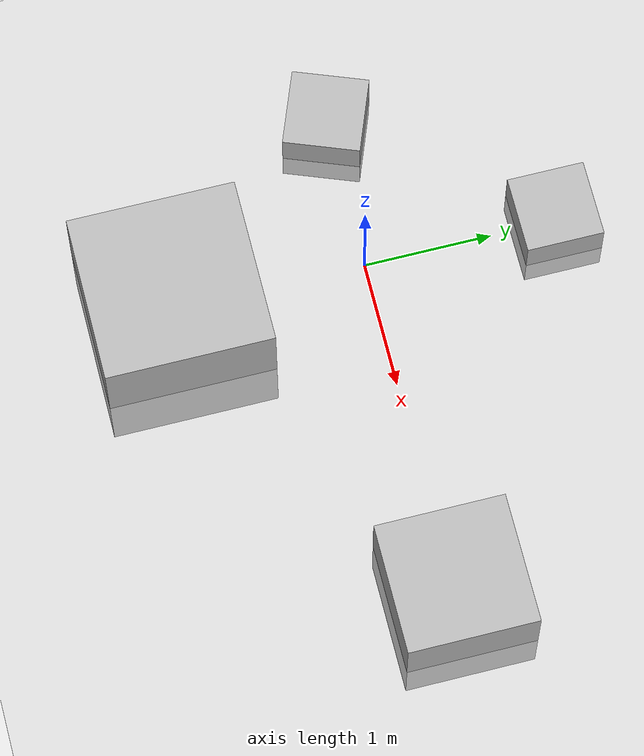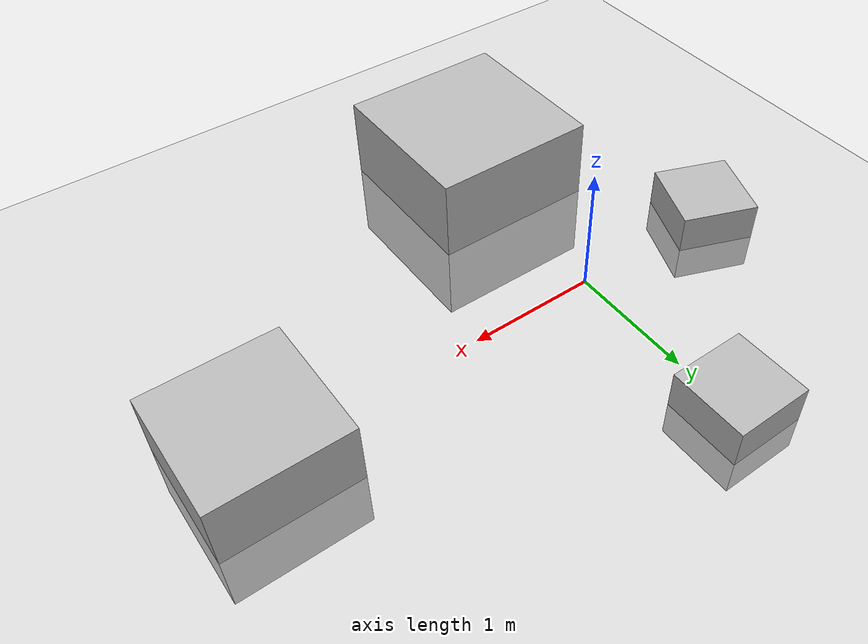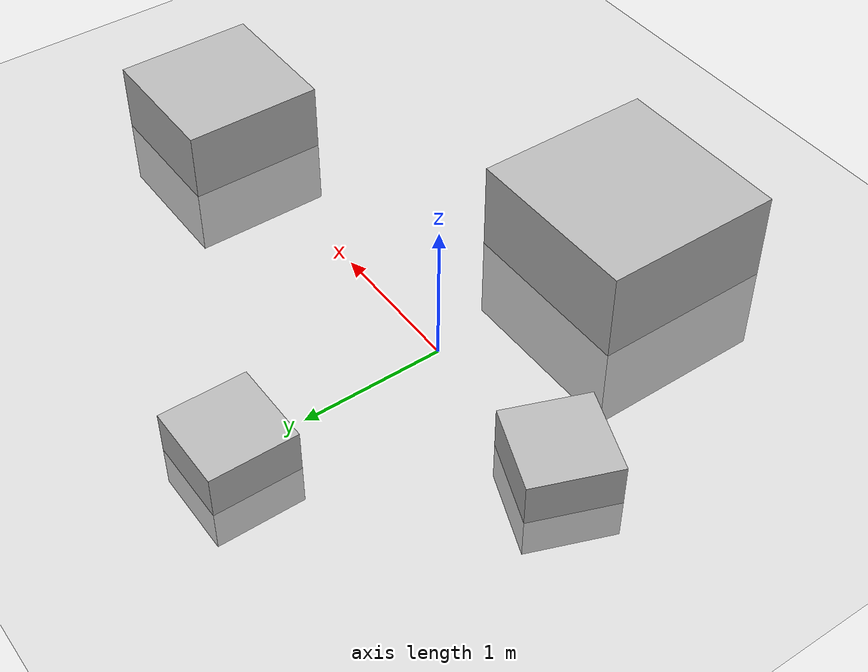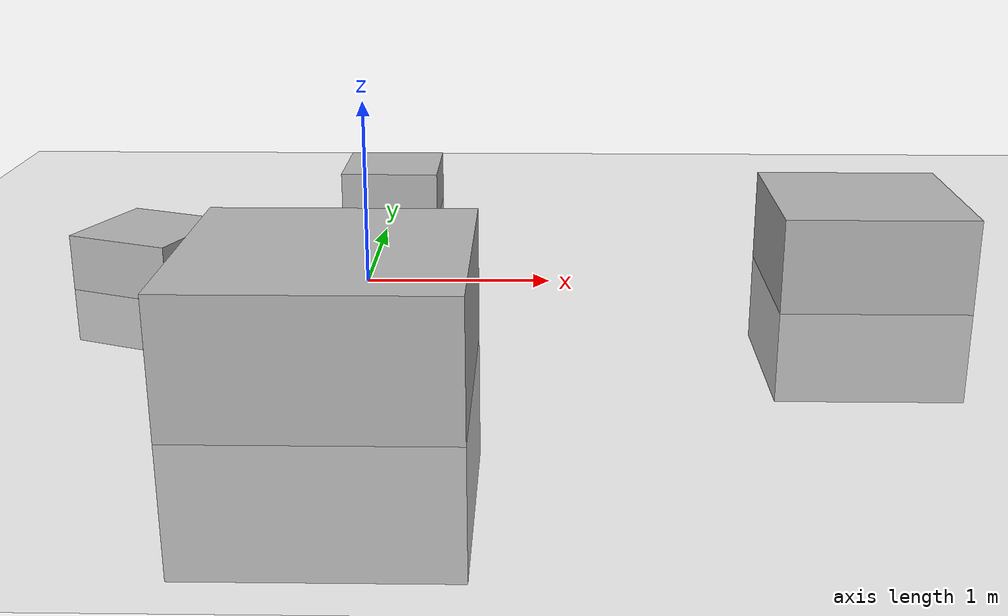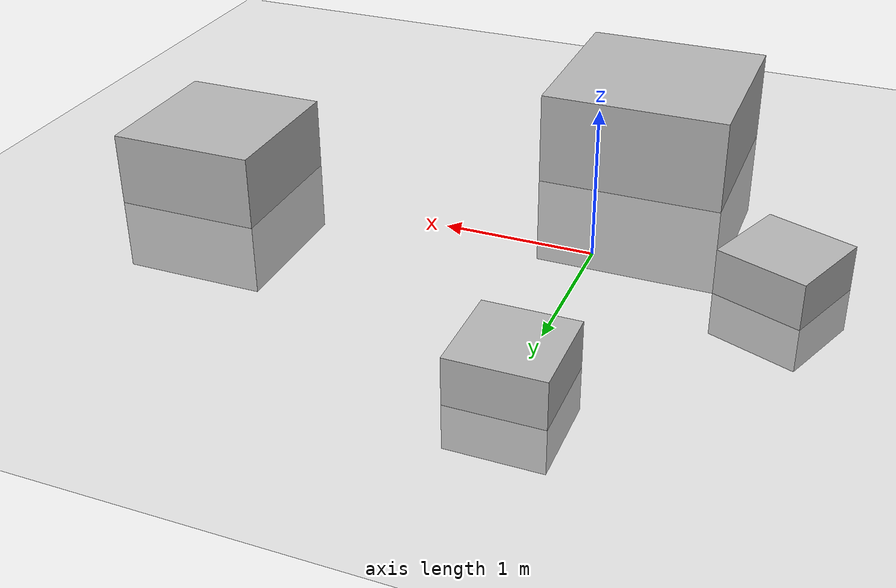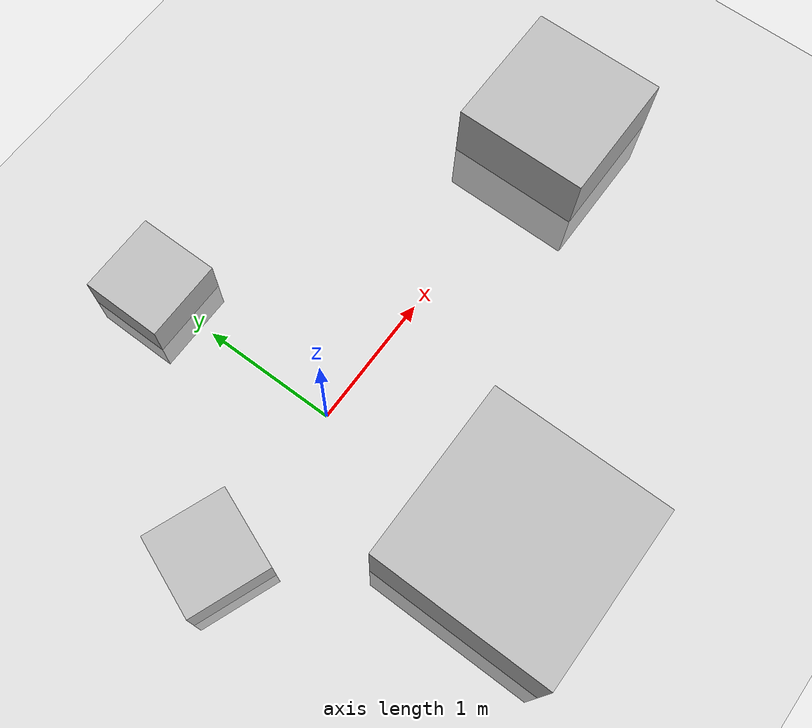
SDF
<sdf version="1.4">
  <world name="default">

    <scene>
      <ambient>0.4 0.4 0.4 1</ambient>
      <background>0.7 0.7 0.7 1</background>
      <shadows>true</shadows>
    </scene>

    <!-- A global light source -->
    <include>
      <uri>model://sun</uri>
    </include>

    <!-- A ground plane -->
    <include>
      <uri>model://ground_plane</uri>
    </include>

    <physics type="ode">
      <real_time_update_rate>1000.0</real_time_update_rate>
      <max_step_size>0.001</max_step_size>
      <real_time_factor>1</real_time_factor>
      <ode>
        <solver>
          <type>quick</type>
          <iters>150</iters>
          <precon_iters>0</precon_iters>
          <sor>1.400000</sor>
          <use_dynamic_moi_rescaling>1</use_dynamic_moi_rescaling>
        </solver>
        <constraints>
          <cfm>0.00001</cfm>
          <erp>0.2</erp>
          <contact_max_correcting_vel>2000.000000</contact_max_correcting_vel>
          <contact_surface_layer>0.01000</contact_surface_layer>
        </constraints>
      </ode>
    </physics>

    <model name="obstacle">
      <pose>2.7 0 0 0 0 0</pose>
      <link name="link">
        <collision name="collision">
          <geometry>
            <box>
              <size>1 1 1</size>
            </box>
          </geometry>
        </collision>

        <visual name="visual">
          <geometry>
            <box>
              <size>1 1 1</size>
            </box>
          </geometry>
        </visual>
      </link>
    </model>

    <model name="obstacle4">
      <pose>0 -1.5 0 0 0 0</pose>
      <link name="link">
        <collision name="collision">
          <geometry>
            <box>
              <size>1.3 1.3 1.3</size>
            </box>
          </geometry>
        </collision>

        <visual name="visual">
          <geometry>
            <box>
              <size>1.3 1.3 1.3</size>
            </box>
          </geometry>
        </visual>
      </link>
    </model>

    <model name="obstacle5">
      <pose>0 1.5 0 0 0 0</pose>
      <link name="link">
        <collision name="collision">
          <geometry>
            <box>
              <size>0.6 0.6 0.6</size>
            </box>
          </geometry>
        </collision>

        <visual name="visual">
          <geometry>
            <box>
              <size>0.6 0.6 0.6</size>
            </box>
          </geometry>
        </visual>
      </link>
    </model>

    <model name="obstacle8">
      <pose>-1.2 0 0 0 0 1.2</pose>
      <link name="link">
        <collision name="collision">
          <geometry>
            <box>
              <size>0.6 0.6 0.6</size>
            </box>
          </geometry>
        </collision>

        <visual name="visual">
          <geometry>
            <box>
              <size>0.6 0.6 0.6</size>
            </box>
          </geometry>
        </visual>
      </link>
    </model>

  </world>

</sdf>
